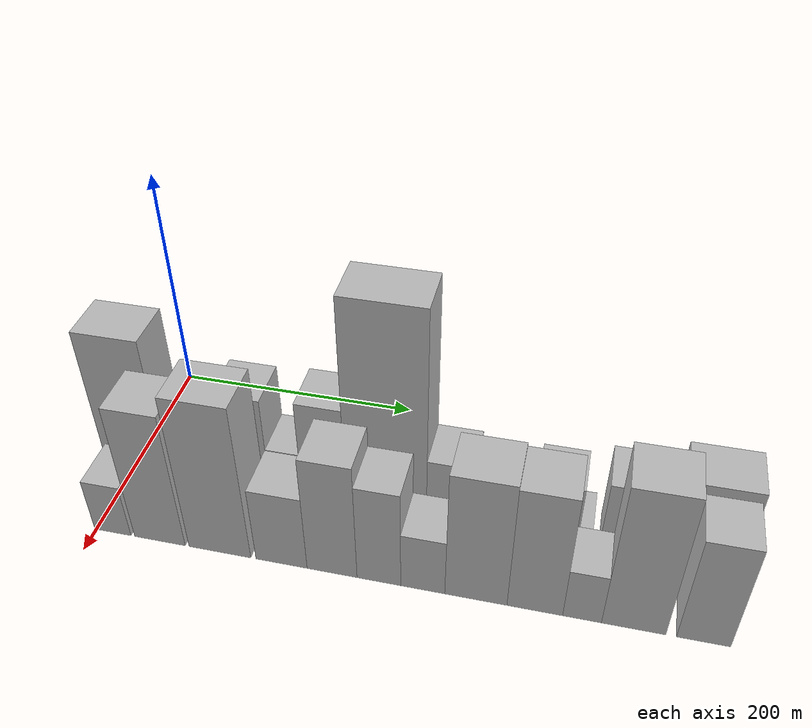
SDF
<sdf version="1.6">
 <world name="default">
  <model name="building_13">
   <static>1</static>
   <pose>100.0000 5.7494 0 0.000000 0.000000 0.000000</pose>
   <link name="link">
    <pose>0 0 69.00 0 0 0</pose>
    <collision name="collision"><geometry><box><size>40.0000 50.9246 138.0000</size></box></geometry></collision>
    <visual name="visual">
     <cast_shadows>0</cast_shadows>
     <geometry><box><size>40.0000 50.9246 138.0000</size></box></geometry>
     <material>
      <script>
       <uri>model://HANNAS_wall/materials/scripts</uri>
       <uri>model://HANNAS_wall/materials/textures</uri>
       <name>vrc/HANNAS_wall</name>
      </script>
     </material>
    </visual>
   </link>
  </model>
  <model name="building_14">
   <static>1</static>
   <pose>100.0000 35.6556 0 0.000000 0.000000 0.000000</pose>
   <link name="link">
    <pose>0 0 9.00 0 0 0</pose>
    <collision name="collision"><geometry><box><size>40.0000 8.8877 18.0000</size></box></geometry></collision>
    <visual name="visual">
     <cast_shadows>0</cast_shadows>
     <geometry><box><size>40.0000 8.8877 18.0000</size></box></geometry>
     <material>
      <script>
       <uri>model://HANNAS_wall/materials/scripts</uri>
       <uri>model://HANNAS_wall/materials/textures</uri>
       <name>vrc/HANNAS_wall</name>
      </script>
     </material>
    </visual>
   </link>
  </model>
  <model name="building_15">
   <static>1</static>
   <pose>100.0000 60.1877 0 0.000000 0.000000 0.000000</pose>
   <link name="link">
    <pose>0 0 34.50 0 0 0</pose>
    <collision name="collision"><geometry><box><size>40.0000 40.1766 69.0000</size></box></geometry></collision>
    <visual name="visual">
     <cast_shadows>0</cast_shadows>
     <geometry><box><size>40.0000 40.1766 69.0000</size></box></geometry>
     <material>
      <script>
       <uri>model://HANNAS_wall/materials/scripts</uri>
       <uri>model://HANNAS_wall/materials/textures</uri>
       <name>vrc/HANNAS_wall</name>
      </script>
     </material>
    </visual>
   </link>
  </model>
  <model name="building_16">
   <static>1</static>
   <pose>100.0000 98.4951 0 0.000000 0.000000 0.000000</pose>
   <link name="link">
    <pose>0 0 49.50 0 0 0</pose>
    <collision name="collision"><geometry><box><size>40.0000 36.4381 99.0000</size></box></geometry></collision>
    <visual name="visual">
     <cast_shadows>0</cast_shadows>
     <geometry><box><size>40.0000 36.4381 99.0000</size></box></geometry>
     <material>
      <script>
       <uri>model://HANNAS_wall/materials/scripts</uri>
       <uri>model://HANNAS_wall/materials/textures</uri>
       <name>vrc/HANNAS_wall</name>
      </script>
     </material>
    </visual>
   </link>
  </model>
  <model name="building_17">
   <static>1</static>
   <pose>100.0000 129.6607 0 0.000000 0.000000 0.000000</pose>
   <link name="link">
    <pose>0 0 25.50 0 0 0</pose>
    <collision name="collision"><geometry><box><size>40.0000 25.8931 51.0000</size></box></geometry></collision>
    <visual name="visual">
     <cast_shadows>0</cast_shadows>
     <geometry><box><size>40.0000 25.8931 51.0000</size></box></geometry>
     <material>
      <script>
       <uri>model://HANNAS_wall/materials/scripts</uri>
       <uri>model://HANNAS_wall/materials/textures</uri>
       <name>vrc/HANNAS_wall</name>
      </script>
     </material>
    </visual>
   </link>
  </model>
  <model name="building_18">
   <static>1</static>
   <pose>100.0000 160.0045 0 0.000000 0.000000 0.000000</pose>
   <link name="link">
    <pose>0 0 51.00 0 0 0</pose>
    <collision name="collision"><geometry><box><size>40.0000 34.7945 102.0000</size></box></geometry></collision>
    <visual name="visual">
     <cast_shadows>0</cast_shadows>
     <geometry><box><size>40.0000 34.7945 102.0000</size></box></geometry>
     <material>
      <script>
       <uri>model://HANNAS_wall/materials/scripts</uri>
       <uri>model://HANNAS_wall/materials/textures</uri>
       <name>vrc/HANNAS_wall</name>
      </script>
     </material>
    </visual>
   </link>
  </model>
  <model name="building_19">
   <static>1</static>
   <pose>100.0000 208.4184 0 0.000000 0.000000 0.000000</pose>
   <link name="link">
    <pose>0 0 100.50 0 0 0</pose>
    <collision name="collision"><geometry><box><size>40.0000 62.0334 201.0000</size></box></geometry></collision>
    <visual name="visual">
     <cast_shadows>0</cast_shadows>
     <geometry><box><size>40.0000 62.0334 201.0000</size></box></geometry>
     <material>
      <script>
       <uri>model://HANNAS_wall/materials/scripts</uri>
       <uri>model://HANNAS_wall/materials/textures</uri>
       <name>vrc/HANNAS_wall</name>
      </script>
     </material>
    </visual>
   </link>
  </model>
  <model name="building_20">
   <static>1</static>
   <pose>100.0000 256.4782 0 0.000000 0.000000 0.000000</pose>
   <link name="link">
    <pose>0 0 33.00 0 0 0</pose>
    <collision name="collision"><geometry><box><size>40.0000 34.0862 66.0000</size></box></geometry></collision>
    <visual name="visual">
     <cast_shadows>0</cast_shadows>
     <geometry><box><size>40.0000 34.0862 66.0000</size></box></geometry>
     <material>
      <script>
       <uri>model://HANNAS_wall/materials/scripts</uri>
       <uri>model://HANNAS_wall/materials/textures</uri>
       <name>vrc/HANNAS_wall</name>
      </script>
     </material>
    </visual>
   </link>
  </model>
  <model name="building_21">
   <static>1</static>
   <pose>100.0000 277.2984 0 0.000000 0.000000 0.000000</pose>
   <link name="link">
    <pose>0 0 9.00 0 0 0</pose>
    <collision name="collision"><geometry><box><size>40.0000 7.5541 18.0000</size></box></geometry></collision>
    <visual name="visual">
     <cast_shadows>0</cast_shadows>
     <geometry><box><size>40.0000 7.5541 18.0000</size></box></geometry>
     <material>
      <script>
       <uri>model://HANNAS_wall/materials/scripts</uri>
       <uri>model://HANNAS_wall/materials/textures</uri>
       <name>vrc/HANNAS_wall</name>
      </script>
     </material>
    </visual>
   </link>
  </model>
  <model name="building_22">
   <static>1</static>
   <pose>100.0000 295.6410 0 0.000000 0.000000 0.000000</pose>
   <link name="link">
    <pose>0 0 28.50 0 0 0</pose>
    <collision name="collision"><geometry><box><size>40.0000 29.1310 57.0000</size></box></geometry></collision>
    <visual name="visual">
     <cast_shadows>0</cast_shadows>
     <geometry><box><size>40.0000 29.1310 57.0000</size></box></geometry>
     <material>
      <script>
       <uri>model://HANNAS_wall/materials/scripts</uri>
       <uri>model://HANNAS_wall/materials/textures</uri>
       <name>vrc/HANNAS_wall</name>
      </script>
     </material>
    </visual>
   </link>
  </model>
  <model name="building_23">
   <static>1</static>
   <pose>100.0000 335.0737 0 0.000000 0.000000 0.000000</pose>
   <link name="link">
    <pose>0 0 31.50 0 0 0</pose>
    <collision name="collision"><geometry><box><size>40.0000 33.7344 63.0000</size></box></geometry></collision>
    <visual name="visual">
     <cast_shadows>0</cast_shadows>
     <geometry><box><size>40.0000 33.7344 63.0000</size></box></geometry>
     <material>
      <script>
       <uri>model://HANNAS_wall/materials/scripts</uri>
       <uri>model://HANNAS_wall/materials/textures</uri>
       <name>vrc/HANNAS_wall</name>
      </script>
     </material>
    </visual>
   </link>
  </model>
  <model name="building_24">
   <static>1</static>
   <pose>100.0000 356.8381 0 0.000000 0.000000 0.000000</pose>
   <link name="link">
    <pose>0 0 10.50 0 0 0</pose>
    <collision name="collision"><geometry><box><size>40.0000 9.7946 21.0000</size></box></geometry></collision>
    <visual name="visual">
     <cast_shadows>0</cast_shadows>
     <geometry><box><size>40.0000 9.7946 21.0000</size></box></geometry>
     <material>
      <script>
       <uri>model://HANNAS_wall/materials/scripts</uri>
       <uri>model://HANNAS_wall/materials/textures</uri>
       <name>vrc/HANNAS_wall</name>
      </script>
     </material>
    </visual>
   </link>
  </model>
  <model name="building_25">
   <static>1</static>
   <pose>100.0000 387.7678 0 0.000000 0.000000 0.000000</pose>
   <link name="link">
    <pose>0 0 36.00 0 0 0</pose>
    <collision name="collision"><geometry><box><size>40.0000 40.0648 72.0000</size></box></geometry></collision>
    <visual name="visual">
     <cast_shadows>0</cast_shadows>
     <geometry><box><size>40.0000 40.0648 72.0000</size></box></geometry>
     <material>
      <script>
       <uri>model://HANNAS_wall/materials/scripts</uri>
       <uri>model://HANNAS_wall/materials/textures</uri>
       <name>vrc/HANNAS_wall</name>
      </script>
     </material>
    </visual>
   </link>
  </model>
  <model name="building_26">
   <static>1</static>
   <pose>100.0000 442.8852 0 0.000000 0.000000 0.000000</pose>
   <link name="link">
    <pose>0 0 43.50 0 0 0</pose>
    <collision name="collision"><geometry><box><size>40.0000 50.1699 87.0000</size></box></geometry></collision>
    <visual name="visual">
     <cast_shadows>0</cast_shadows>
     <geometry><box><size>40.0000 50.1699 87.0000</size></box></geometry>
     <material>
      <script>
       <uri>model://HANNAS_wall/materials/scripts</uri>
       <uri>model://HANNAS_wall/materials/textures</uri>
       <name>vrc/HANNAS_wall</name>
      </script>
     </material>
    </visual>
   </link>
  </model>
  <model name="building_38">
   <static>1</static>
   <pose>160.0000 13.2323 0 0.000000 0.000000 0.000000</pose>
   <link name="link">
    <pose>0 0 25.50 0 0 0</pose>
    <collision name="collision"><geometry><box><size>40.0000 29.2047 51.0000</size></box></geometry></collision>
    <visual name="visual">
     <cast_shadows>0</cast_shadows>
     <geometry><box><size>40.0000 29.2047 51.0000</size></box></geometry>
     <material>
      <script>
       <uri>model://HANNAS_wall/materials/scripts</uri>
       <uri>model://HANNAS_wall/materials/textures</uri>
       <name>vrc/HANNAS_wall</name>
      </script>
     </material>
    </visual>
   </link>
  </model>
  <model name="building_39">
   <static>1</static>
   <pose>160.0000 50.8730 0 0.000000 0.000000 0.000000</pose>
   <link name="link">
    <pose>0 0 64.50 0 0 0</pose>
    <collision name="collision"><geometry><box><size>40.0000 40.0767 129.0000</size></box></geometry></collision>
    <visual name="visual">
     <cast_shadows>0</cast_shadows>
     <geometry><box><size>40.0000 40.0767 129.0000</size></box></geometry>
     <material>
      <script>
       <uri>model://HANNAS_wall/materials/scripts</uri>
       <uri>model://HANNAS_wall/materials/textures</uri>
       <name>vrc/HANNAS_wall</name>
      </script>
     </material>
    </visual>
   </link>
  </model>
  <model name="building_40">
   <static>1</static>
   <pose>160.0000 97.8674 0 0.000000 0.000000 0.000000</pose>
   <link name="link">
    <pose>0 0 73.50 0 0 0</pose>
    <collision name="collision"><geometry><box><size>40.0000 47.9120 147.0000</size></box></geometry></collision>
    <visual name="visual">
     <cast_shadows>0</cast_shadows>
     <geometry><box><size>40.0000 47.9120 147.0000</size></box></geometry>
     <material>
      <script>
       <uri>model://HANNAS_wall/materials/scripts</uri>
       <uri>model://HANNAS_wall/materials/textures</uri>
       <name>vrc/HANNAS_wall</name>
      </script>
     </material>
    </visual>
   </link>
  </model>
  <model name="building_41">
   <static>1</static>
   <pose>160.0000 145.2065 0 0.000000 0.000000 0.000000</pose>
   <link name="link">
    <pose>0 0 36.00 0 0 0</pose>
    <collision name="collision"><geometry><box><size>40.0000 38.7661 72.0000</size></box></geometry></collision>
    <visual name="visual">
     <cast_shadows>0</cast_shadows>
     <geometry><box><size>40.0000 38.7661 72.0000</size></box></geometry>
     <material>
      <script>
       <uri>model://HANNAS_wall/materials/scripts</uri>
       <uri>model://HANNAS_wall/materials/textures</uri>
       <name>vrc/HANNAS_wall</name>
      </script>
     </material>
    </visual>
   </link>
  </model>
  <model name="building_42">
   <static>1</static>
   <pose>160.0000 183.1863 0 0.000000 0.000000 0.000000</pose>
   <link name="link">
    <pose>0 0 55.50 0 0 0</pose>
    <collision name="collision"><geometry><box><size>40.0000 37.1935 111.0000</size></box></geometry></collision>
    <visual name="visual">
     <cast_shadows>0</cast_shadows>
     <geometry><box><size>40.0000 37.1935 111.0000</size></box></geometry>
     <material>
      <script>
       <uri>model://HANNAS_wall/materials/scripts</uri>
       <uri>model://HANNAS_wall/materials/textures</uri>
       <name>vrc/HANNAS_wall</name>
      </script>
     </material>
    </visual>
   </link>
  </model>
  <model name="building_43">
   <static>1</static>
   <pose>160.0000 217.7549 0 0.000000 0.000000 0.000000</pose>
   <link name="link">
    <pose>0 0 46.50 0 0 0</pose>
    <collision name="collision"><geometry><box><size>40.0000 31.9437 93.0000</size></box></geometry></collision>
    <visual name="visual">
     <cast_shadows>0</cast_shadows>
     <geometry><box><size>40.0000 31.9437 93.0000</size></box></geometry>
     <material>
      <script>
       <uri>model://HANNAS_wall/materials/scripts</uri>
       <uri>model://HANNAS_wall/materials/textures</uri>
       <name>vrc/HANNAS_wall</name>
      </script>
     </material>
    </visual>
   </link>
  </model>
  <model name="building_44">
   <static>1</static>
   <pose>160.0000 249.5919 0 0.000000 0.000000 0.000000</pose>
   <link name="link">
    <pose>0 0 27.00 0 0 0</pose>
    <collision name="collision"><geometry><box><size>40.0000 31.7304 54.0000</size></box></geometry></collision>
    <visual name="visual">
     <cast_shadows>0</cast_shadows>
     <geometry><box><size>40.0000 31.7304 54.0000</size></box></geometry>
     <material>
      <script>
       <uri>model://HANNAS_wall/materials/scripts</uri>
       <uri>model://HANNAS_wall/materials/textures</uri>
       <name>vrc/HANNAS_wall</name>
      </script>
     </material>
    </visual>
   </link>
  </model>
  <model name="building_45">
   <static>1</static>
   <pose>160.0000 287.4632 0 0.000000 0.000000 0.000000</pose>
   <link name="link">
    <pose>0 0 60.00 0 0 0</pose>
    <collision name="collision"><geometry><box><size>40.0000 44.0123 120.0000</size></box></geometry></collision>
    <visual name="visual">
     <cast_shadows>0</cast_shadows>
     <geometry><box><size>40.0000 44.0123 120.0000</size></box></geometry>
     <material>
      <script>
       <uri>model://HANNAS_wall/materials/scripts</uri>
       <uri>model://HANNAS_wall/materials/textures</uri>
       <name>vrc/HANNAS_wall</name>
      </script>
     </material>
    </visual>
   </link>
  </model>
  <model name="building_46">
   <static>1</static>
   <pose>160.0000 328.7568 0 0.000000 0.000000 0.000000</pose>
   <link name="link">
    <pose>0 0 58.50 0 0 0</pose>
    <collision name="collision"><geometry><box><size>40.0000 38.5747 117.0000</size></box></geometry></collision>
    <visual name="visual">
     <cast_shadows>0</cast_shadows>
     <geometry><box><size>40.0000 38.5747 117.0000</size></box></geometry>
     <material>
      <script>
       <uri>model://HANNAS_wall/materials/scripts</uri>
       <uri>model://HANNAS_wall/materials/textures</uri>
       <name>vrc/HANNAS_wall</name>
      </script>
     </material>
    </visual>
   </link>
  </model>
  <model name="building_47">
   <static>1</static>
   <pose>160.0000 361.2684 0 0.000000 0.000000 0.000000</pose>
   <link name="link">
    <pose>0 0 24.00 0 0 0</pose>
    <collision name="collision"><geometry><box><size>40.0000 26.4486 48.0000</size></box></geometry></collision>
    <visual name="visual">
     <cast_shadows>0</cast_shadows>
     <geometry><box><size>40.0000 26.4486 48.0000</size></box></geometry>
     <material>
      <script>
       <uri>model://HANNAS_wall/materials/scripts</uri>
       <uri>model://HANNAS_wall/materials/textures</uri>
       <name>vrc/HANNAS_wall</name>
      </script>
     </material>
    </visual>
   </link>
  </model>
  <model name="building_48">
   <static>1</static>
   <pose>160.0000 396.1032 0 0.000000 0.000000 0.000000</pose>
   <link name="link">
    <pose>0 0 67.50 0 0 0</pose>
    <collision name="collision"><geometry><box><size>40.0000 43.2210 135.0000</size></box></geometry></collision>
    <visual name="visual">
     <cast_shadows>0</cast_shadows>
     <geometry><box><size>40.0000 43.2210 135.0000</size></box></geometry>
     <material>
      <script>
       <uri>model://HANNAS_wall/materials/scripts</uri>
       <uri>model://HANNAS_wall/materials/textures</uri>
       <name>vrc/HANNAS_wall</name>
      </script>
     </material>
    </visual>
   </link>
  </model>
  <model name="building_49">
   <static>1</static>
   <pose>160.0000 442.4827 0 0.000000 0.000000 0.000000</pose>
   <link name="link">
    <pose>0 0 49.50 0 0 0</pose>
    <collision name="collision"><geometry><box><size>40.0000 35.5379 99.0000</size></box></geometry></collision>
    <visual name="visual">
     <cast_shadows>0</cast_shadows>
     <geometry><box><size>40.0000 35.5379 99.0000</size></box></geometry>
     <material>
      <script>
       <uri>model://HANNAS_wall/materials/scripts</uri>
       <uri>model://HANNAS_wall/materials/textures</uri>
       <name>vrc/HANNAS_wall</name>
      </script>
     </material>
    </visual>
   </link>
  </model>
 </world>
</sdf>
